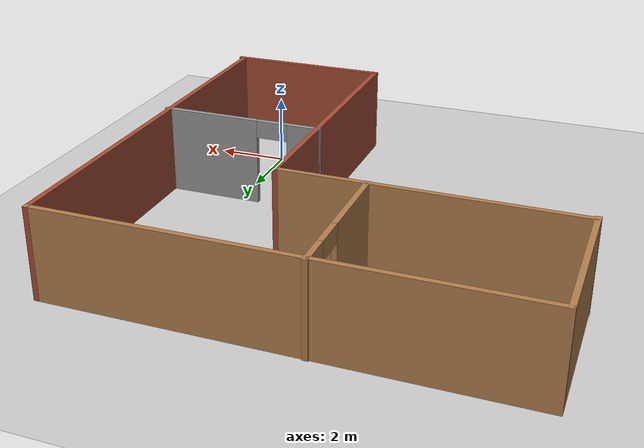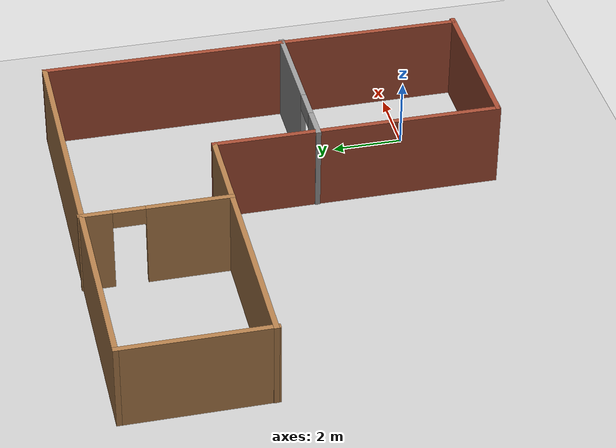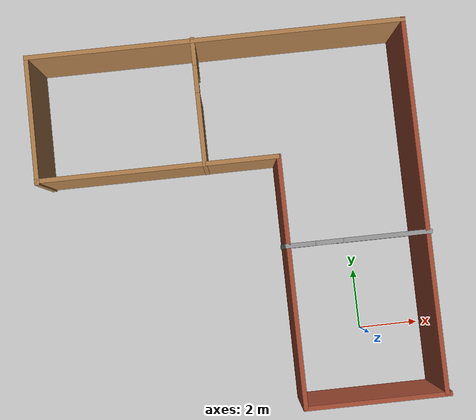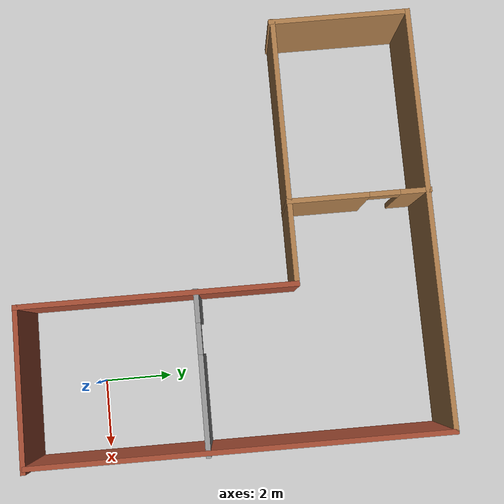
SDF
<sdf version="1.7">
 <world name="default">
  <light name="sun" type="directional">
   <pose>0 0 10 0 -0 0</pose>
   <diffuse>0.8 0.8 0.8 1</diffuse>
   <specular>0.2 0.2 0.2 1</specular>
   <attenuation>
    <range>1000</range>
    <constant>0.9</constant>
    <linear>0.01</linear>
    <quadratic>0.001</quadratic>
   </attenuation>
   <direction>-0.5 0.1 -0.9</direction>
   <spot><inner_angle>0</inner_angle><outer_angle>0</outer_angle><falloff>0</falloff></spot>
  </light>
  <model name="ground_plane">
   <static>1</static>
   <link name="link">
    <collision name="collision">
     <geometry><plane><normal>0 0 1</normal><size>100 100</size></plane></geometry>
     <surface><friction><ode><mu>100</mu><mu2>50</mu2></ode></friction></surface>
    </collision>
    <visual name="visual">
     <cast_shadows>0</cast_shadows>
     <geometry><plane><normal>0 0 1</normal><size>100 100</size></plane></geometry>
     <material>
      <script><uri>file://media/materials/scripts/gazebo.material</uri><name>Gazebo/Grey</name></script>
     </material>
    </visual>
   </link>
  </model>
  <gravity>0 0 -9.8</gravity>
  <magnetic_field>6e-06 2.3e-05 -4.2e-05</magnetic_field>
  <atmosphere type="adiabatic"/>
  <physics type="ode">
   <max_step_size>0.001</max_step_size>
   <real_time_factor>1</real_time_factor>
   <real_time_update_rate>1000</real_time_update_rate>
  </physics>
  <scene><ambient>0.4 0.4 0.4 1</ambient><background>0.7 0.7 0.7 1</background><shadows>1</shadows></scene>
  <audio><device>default</device></audio>
  <spherical_coordinates>
   <surface_model>EARTH_WGS84</surface_model>
   <latitude_deg>0</latitude_deg>
   <longitude_deg>0</longitude_deg>
   <elevation>0</elevation>
   <heading_deg>0</heading_deg>
  </spherical_coordinates>
  <model name="wormhole_building">
   <pose>-3.96441 3.98188 0 0 -0 0</pose>
   <link name="Wall_10">
    <collision name="Wall_10_Collision">
     <geometry><box><size>12.5 0.15 2.5</size></box></geometry>
     <pose>0 0 1.25 0 -0 0</pose>
    </collision>
    <visual name="Wall_10_Visual">
     <pose>0 0 1.25 0 -0 0</pose>
     <geometry><box><size>12.5 0.15 2.5</size></box></geometry>
     <material>
      <script><uri>file://media/materials/scripts/gazebo.material</uri><name>Gazebo/Wood</name></script>
      <ambient>1 1 1 1</ambient>
     </material>
     <meta><layer>0</layer></meta>
    </visual>
    <pose>-0.039659 6.05647 0 0 -0 3.14159</pose>
   </link>
   <link name="Wall_12">
    <collision name="Wall_12_Collision">
     <geometry><box><size>4.25 0.15 2.5</size></box></geometry>
     <pose>0 0 1.25 0 -0 0</pose>
    </collision>
    <visual name="Wall_12_Visual">
     <pose>0 0 1.25 0 -0 0</pose>
     <geometry><box><size>4.25 0.15 2.5</size></box></geometry>
     <material>
      <script><uri>file://media/materials/scripts/gazebo.material</uri><name>Gazebo/Wood</name></script>
      <ambient>1 1 1 1</ambient>
     </material>
     <meta><layer>0</layer></meta>
    </visual>
    <pose>-6.21466 4.00647 0 0 -0 -1.5708</pose>
   </link>
   <link name="Wall_18">
    <collision name="Wall_18_Collision">
     <geometry><box><size>8.25 0.15 2.5</size></box></geometry>
     <pose>0 0 1.25 0 -0 0</pose>
    </collision>
    <visual name="Wall_18_Visual">
     <pose>0 0 1.25 0 -0 0</pose>
     <geometry><box><size>8.25 0.15 2.5</size></box></geometry>
     <material>
      <script><uri>file://media/materials/scripts/gazebo.material</uri><name>Gazebo/Bricks</name></script>
      <ambient>1 1 1 1</ambient>
     </material>
     <meta><layer>0</layer></meta>
    </visual>
    <pose>1.625 -2.04462 0 0 -0 -1.5708</pose>
   </link>
   <link name="Wall_20">
    <collision name="Wall_20_Collision">
     <geometry><box><size>8 0.15 2.5</size></box></geometry>
     <pose>0 0 1.25 0 -0 0</pose>
    </collision>
    <visual name="Wall_20_Visual">
     <pose>0 0 1.25 0 -0 0</pose>
     <geometry><box><size>8 0.15 2.5</size></box></geometry>
     <material>
      <script><uri>file://media/materials/scripts/gazebo.material</uri><name>Gazebo/Wood</name></script>
      <ambient>1 1 1 1</ambient>
     </material>
     <meta><layer>0</layer></meta>
    </visual>
    <pose>-2.3 2.00538 0 0 -0 3.14159</pose>
   </link>
   <link name="Wall_22">
    <collision name="Wall_22_Collision">
     <geometry><box><size>4.75 0.15 2.5</size></box></geometry>
     <pose>0 0 1.25 0 -0 0</pose>
    </collision>
    <visual name="Wall_22_Visual">
     <pose>0 0 1.25 0 -0 0</pose>
     <geometry><box><size>4.75 0.15 2.5</size></box></geometry>
     <material>
      <script><uri>file://media/materials/scripts/gazebo.material</uri><name>Gazebo/Bricks</name></script>
      <ambient>1 1 1 1</ambient>
     </material>
     <meta><layer>0</layer></meta>
    </visual>
    <pose>3.925 -6.09462 0 0 -0 0</pose>
   </link>
   <link name="Wall_24">
    <pose>3.89927 -0.911368 0 0 -0 0</pose>
    <visual name="Wall_24_Visual_0">
     <pose>-1.88699 0 1.25 0 -0 0</pose>
     <geometry><box><size>0.976011 0.15 2.5</size></box></geometry>
     <material>
      <script><uri>file://media/materials/scripts/gazebo.material</uri><name>Gazebo/Grey</name></script>
      <ambient>1 1 1 1</ambient>
     </material>
     <meta><layer>0</layer></meta>
    </visual>
    <collision name="Wall_24_Collision_0">
     <geometry><box><size>0.976011 0.15 2.5</size></box></geometry>
     <pose>-1.88699 0 1.25 0 -0 0</pose>
    </collision>
    <visual name="Wall_24_Visual_1">
     <pose>0.938005 0 1.25 0 -0 0</pose>
     <geometry><box><size>2.87399 0.15 2.5</size></box></geometry>
     <material>
      <script><uri>file://media/materials/scripts/gazebo.material</uri><name>Gazebo/Grey</name></script>
      <ambient>1 1 1 1</ambient>
     </material>
     <meta><layer>0</layer></meta>
    </visual>
    <collision name="Wall_24_Collision_1">
     <geometry><box><size>2.87399 0.15 2.5</size></box></geometry>
     <pose>0.938005 0 1.25 0 -0 0</pose>
    </collision>
    <visual name="Wall_24_Visual_2">
     <pose>-0.948989 0 2.25 0 -0 0</pose>
     <geometry><box><size>0.9 0.15 0.5</size></box></geometry>
     <material>
      <script><uri>file://media/materials/scripts/gazebo.material</uri><name>Gazebo/Grey</name></script>
      <ambient>1 1 1 1</ambient>
     </material>
     <meta><layer>0</layer></meta>
    </visual>
    <collision name="Wall_24_Collision_2">
     <geometry><box><size>0.9 0.15 0.5</size></box></geometry>
     <pose>-0.948989 0 2.25 0 -0 0</pose>
    </collision>
   </link>
   <link name="Wall_26">
    <pose>-0.771635 4.04462 0 0 -0 -1.5708</pose>
    <visual name="Wall_26_Visual_0">
     <pose>-1.66117 0 1.25 0 -0 0</pose>
     <geometry><box><size>0.927669 0.15 2.5</size></box></geometry>
     <material>
      <script><uri>file://media/materials/scripts/gazebo.material</uri><name>Gazebo/Wood</name></script>
      <ambient>1 1 1 1</ambient>
     </material>
     <meta><layer>0</layer></meta>
    </visual>
    <collision name="Wall_26_Collision_0">
     <geometry><box><size>0.927669 0.15 2.5</size></box></geometry>
     <pose>-1.66117 0 1.25 0 -0 0</pose>
    </collision>
    <visual name="Wall_26_Visual_1">
     <pose>0.913835 0 1.25 0 -0 0</pose>
     <geometry><box><size>2.42233 0.15 2.5</size></box></geometry>
     <material>
      <script><uri>file://media/materials/scripts/gazebo.material</uri><name>Gazebo/Wood</name></script>
      <ambient>1 1 1 1</ambient>
     </material>
     <meta><layer>0</layer></meta>
    </visual>
    <collision name="Wall_26_Collision_1">
     <geometry><box><size>2.42233 0.15 2.5</size></box></geometry>
     <pose>0.913835 0 1.25 0 -0 0</pose>
    </collision>
    <visual name="Wall_26_Visual_2">
     <pose>-0.747331 0 2.25 0 -0 0</pose>
     <geometry><box><size>0.9 0.15 0.5</size></box></geometry>
     <material>
      <script><uri>file://media/materials/scripts/gazebo.material</uri><name>Gazebo/Wood</name></script>
      <ambient>1 1 1 1</ambient>
     </material>
     <meta><layer>0</layer></meta>
    </visual>
    <collision name="Wall_26_Collision_2">
     <geometry><box><size>0.9 0.15 0.5</size></box></geometry>
     <pose>-0.747331 0 2.25 0 -0 0</pose>
    </collision>
   </link>
   <link name="Wall_9">
    <collision name="Wall_9_Collision">
     <geometry><box><size>12.25 0.15 2.5</size></box></geometry>
     <pose>0 0 1.25 0 -0 0</pose>
    </collision>
    <visual name="Wall_9_Visual">
     <pose>0 0 1.25 0 -0 0</pose>
     <geometry><box><size>12.25 0.15 2.5</size></box></geometry>
     <material>
      <script><uri>file://media/materials/scripts/gazebo.material</uri><name>Gazebo/Bricks</name></script>
      <ambient>1 1 1 1</ambient>
     </material>
     <meta><layer>0</layer></meta>
    </visual>
    <pose>6.13534 0.006466 0 0 -0 1.5708</pose>
   </link>
   <static>1</static>
  </model>
 </world>
</sdf>
